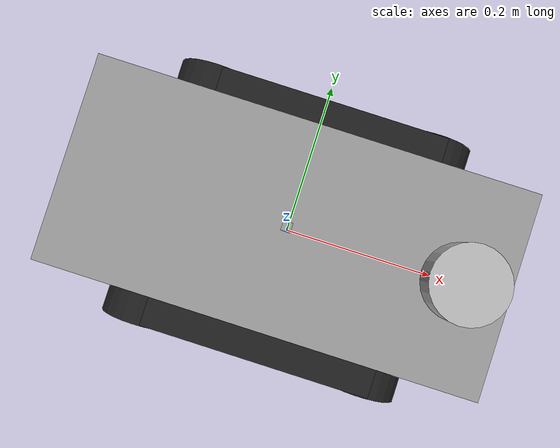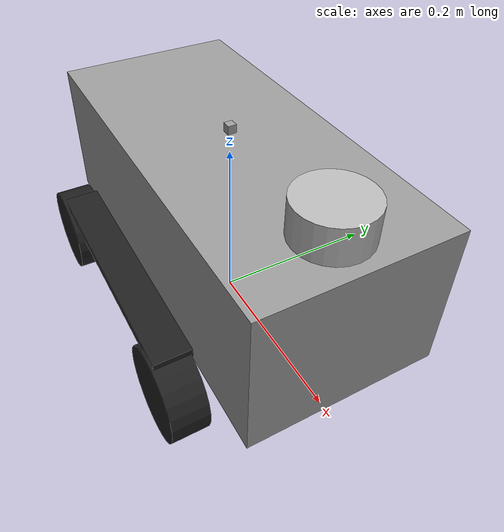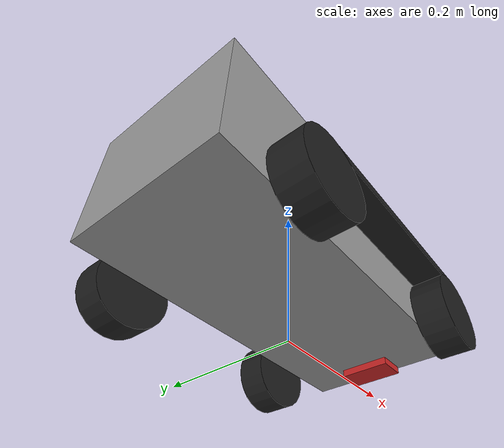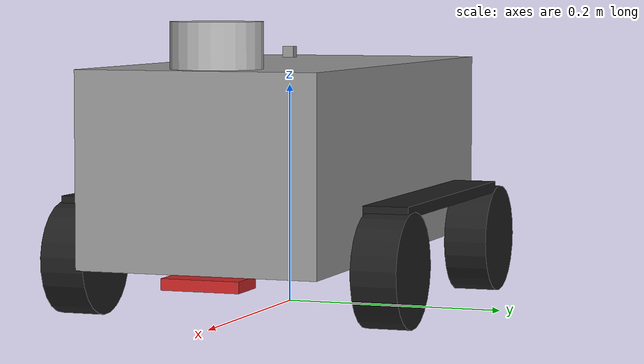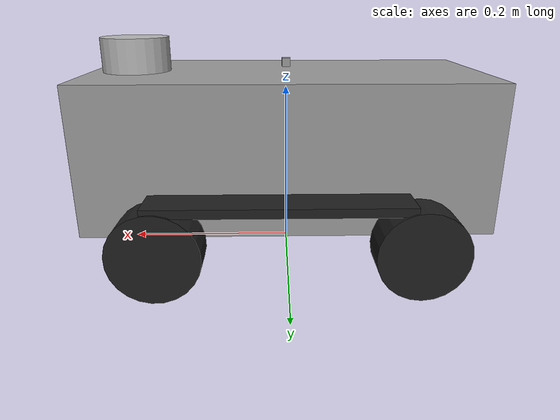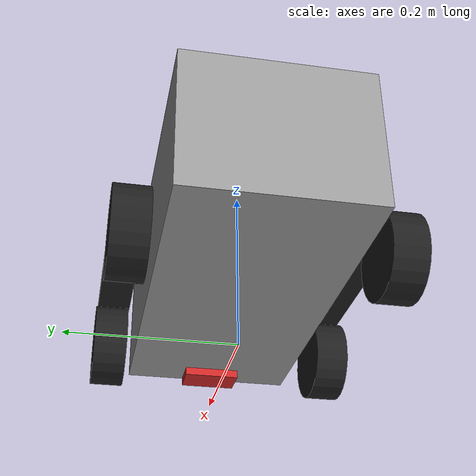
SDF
<?xml version="1.0" ?>

<sdf version="1.5">
  <!-- http://sdformat.org/spec?elem=sensor&ver=1.5 -->
  <model name="tankbot">
    <link name="chassis">
      <pose>0 0 0.135  0 0 0</pose>
      <inertial>
        <pose>0.04650000000000001 0 0  0 0 0</pose>
        <mass>2.0</mass>
        <inertia>
          <ixx>0.012592666666666665</ixx>
          <iyy>0.04085416666666667</iyy>
          <izz>0.043813500000000005</izz>
          <ixy>0</ixy>
          <ixz>0</ixz>
          <iyz>0</iyz>
        </inertia>
      </inertial>
      <collision name="collision">
        <geometry>
          <box>
            <size>0.465 0.216 0.17</size>
          </box>
        </geometry>
      </collision>
      <visual name="visual">
        <geometry>
          <box>
            <size>0.465 0.216 0.17</size>
          </box>
        </geometry>
        <material>
          <script>
            <uri>file://media/materials/scripts/gazebo.material</uri>
            <name>Gazebo/Grey</name>
          </script>
        </material>
      </visual>
    </link>

    <link name="wheel_fl">
      <pose>
        0.1395 0.14200000000000002 0.05
        -1.5707963267948966 -0.08726646259971647 0
      </pose>
      <inertial>
        <mass>0.25</mass>
        <inertia>
          <ixx>0.00018958333333333338</ixx>
          <iyy>0.00018958333333333338</iyy>
          <izz>0.00031250000000000006</izz>
          <ixy>0</ixy>
          <ixz>0</ixz>
          <iyz>0</iyz>
        </inertia>
      </inertial>
      <collision name="collision">
        <geometry>
          <cylinder>
            <radius>0.05</radius>
            <length>0.04</length>
          </cylinder>
        </geometry>
      </collision>
      <visual name="wheel_fl">
        <geometry>
          <cylinder>
            <radius>0.05</radius>
            <length>0.04</length>
          </cylinder>
        </geometry>
        <material>
          <script>
            <uri>file://media/materials/scripts/gazebo.material</uri>
            <name>Gazebo/Black</name>
          </script>
        </material>
      </visual>
    </link>

    <joint name="wheel_fl_drive" type="revolute">
      <parent>chassis</parent>
      <child>wheel_fl</child>
      <axis>
        <xyz>0 0 1</xyz>
      </axis>
    </joint>

    <link name="chain_l_up">
      <pose>
        0.0098 0.14 0.1
        0.0 0.0 0.0
      </pose>
      <gravity>0</gravity>
      <collision name="collision">
        <geometry>
          <box>
            <size>0.28 0.04 0.01</size>
          </box>
        </geometry>
      </collision>
      <visual name="visual">
        <geometry>
          <box>
            <size>0.28 0.04 0.01</size>
          </box>
        </geometry>
        <material>
          <script>
            <uri>file://media/materials/scripts/gazebo.material</uri>
            <name>Gazebo/Black</name>
          </script>
        </material>
      </visual>
    </link>

    <link name="chain_r_up">
      <pose>
        0.0098 -0.14 0.1
        0.0 0.0 0.0
      </pose>
      <gravity>0</gravity>
      <collision name="collision">
        <geometry>
          <box>
            <size>0.28 0.04 0.01</size>
          </box>
        </geometry>
      </collision>
      <visual name="visual">
        <geometry>
          <box>
            <size>0.28 0.04 0.01</size>
          </box>
        </geometry>
        <material>
          <script>
            <uri>file://media/materials/scripts/gazebo.material</uri>
            <name>Gazebo/Black</name>
          </script>
        </material>
      </visual>
    </link>

    <joint name="chain_up_joint" type="revolute">
      <parent>chassis</parent>
      <child>chain_r_up</child>
    </joint>

    <joint name="chain_up_2_joint" type="revolute">
      <parent>chassis</parent>
      <child>chain_l_up</child>
    </joint>

    <link name="wheel_fr">
      <pose>
        0.1395 -0.14200000000000002 0.05
        -1.5707963267948966 -0.08726646259971647 0
      </pose>
      <inertial>
        <mass>0.25</mass>
        <inertia>
          <ixx>0.00018958333333333338</ixx>
          <iyy>0.00018958333333333338</iyy>
          <izz>0.00031250000000000006</izz>
          <ixy>0</ixy>
          <ixz>0</ixz>
          <iyz>0</iyz>
        </inertia>
      </inertial>
      <collision name="collision">
        <geometry>
          <cylinder>
            <radius>0.05</radius>
            <length>0.04</length>
          </cylinder>
        </geometry>
      </collision>
      <visual name="visual">
        <geometry>
          <cylinder>
            <radius>0.05</radius>
            <length>0.04</length>
          </cylinder>
        </geometry>
        <material>
          <script>
            <uri>file://media/materials/scripts/gazebo.material</uri>
            <name>Gazebo/Black</name>
          </script>
        </material>
      </visual>
    </link>

    <joint name="wheel_fr_drive" type="revolute">
      <parent>chassis</parent>
      <child>wheel_fr</child>
      <axis>
        <xyz>0 0 1</xyz>
      </axis>
    </joint>

    <link name="wheel_rl">
      <pose>
       -0.1395 0.14200000000000002 0.05
       -1.5707963267948966 0 0
      </pose>
      <inertial>
        <mass>0.25</mass>
        <inertia>
          <ixx>0.00018958333333333338</ixx>
          <iyy>0.00018958333333333338</iyy>
          <izz>0.00031250000000000006</izz>
          <ixy>0</ixy>
          <ixz>0</ixz>
          <iyz>0</iyz>
        </inertia>
      </inertial>
      <collision name="collision">
        <geometry>
          <cylinder>
            <radius>0.05</radius>
            <length>0.04</length>
          </cylinder>
        </geometry>
      </collision>
      <visual name="visual">
        <geometry>
          <cylinder>
            <radius>0.05</radius>
            <length>0.04</length>
          </cylinder>
        </geometry>
        <material>
          <script>
            <uri>file://media/materials/scripts/gazebo.material</uri>
            <name>Gazebo/Black</name>
          </script>
        </material>
      </visual>
    </link>
    <joint name="wheel_rl_drive" type="revolute">
      <parent>chassis</parent>
      <child>wheel_rl</child>
      <axis>
        <xyz>0 0 1</xyz>
      </axis>
    </joint>

    <link name="wheel_rr">
      <pose>
       -0.1395 -0.14200000000000002 0.05
       -1.5707963267948966 0 0
      </pose>
      <inertial>
        <mass>0.25</mass>
        <inertia>
          <ixx>0.00018958333333333338</ixx>
          <iyy>0.00018958333333333338</iyy>
          <izz>0.00031250000000000006</izz>
          <ixy>0</ixy>
          <ixz>0</ixz>
          <iyz>0</iyz>
        </inertia>
      </inertial>
      <collision name="collision">
        <geometry>
          <cylinder>
            <radius>0.05</radius>
            <length>0.04</length>
          </cylinder>
        </geometry>
      </collision>
      <visual name="visual">
        <geometry>
          <cylinder>
            <radius>0.05</radius>
            <length>0.04</length>
          </cylinder>
        </geometry>
        <material>
          <script>
            <uri>file://media/materials/scripts/gazebo.material</uri>
            <name>Gazebo/Black</name>
          </script>
        </material>
      </visual>
    </link>
    <joint name="wheel_rr_drive" type="revolute">
      <parent>chassis</parent>
      <child>wheel_rr</child>
      <axis>
        <xyz>0 0 1</xyz>
      </axis>
    </joint>

     <include>
      <uri>model://ultrasonic_sensor</uri>
      <pose>
        0.18 0.0 0.24
        0.0 0.0 0.0
      </pose>
    </include>

    <joint name="sonar_joint" type="fixed">
      <child>ultrasonic_sensor::link</child>
      <parent>chassis</parent>
    </joint>

    <include>
      <uri>model://camera_sensor</uri>
      <pose>
        0.2 0.0 0.04
        0.0 1.57 0.0
      </pose>
    </include>

    <joint name="camera_joint" type="fixed">
      <child>camera_sensor::link</child>
      <parent>chassis</parent>
    </joint>

    <include>
      <uri>model://microphone_sensor</uri>
      <pose>
        0.0 0.0 0.23
        0.0 0.0 0.0
      </pose>
    </include>

  <plugin name="tankbot_control" filename='libtank_control_plugin.so'/>
  </model>
</sdf>

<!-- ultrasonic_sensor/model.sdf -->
<sdf version="1.6">
  <model name="ultrasonic_sensor">
    <pose>0 0 0.02 0 0 0</pose>
    <link name="link">

      <inertial>
        <mass>0.1</mass>
      </inertial>

      <visual name="visual">
        <geometry>
          <cylinder>
            <radius>0.04</radius>
            <length>0.04</length>
          </cylinder>
        </geometry>
      </visual>

      <collision name="collision-base">
        <pose>0 0 -0.0145 0 0 0</pose>
        <geometry>
          <box>
            <size>0.05 0.05 0.041</size>
          </box>
        </geometry>
      </collision>

      <collision name="collision-top">
        <pose>0 0 0.0205 0 0 0</pose>
        <geometry>
          <cylinder>
            <radius>0.021</radius>
            <length>0.029</length>
          </cylinder>
        </geometry>
      </collision>

      <sensor name="sonar" type="sonar">
        <pose>0.04 0 0 0 1.5 3.14</pose>
        <sonar>
          <min>0</min>
          <max>3</max>
          <radius>0.3</radius>
        </sonar>
        <plugin name="sonar" filename="libSonarPlugin.so" />
        <always_on>1</always_on>
        <update_rate>30</update_rate>
        <visualize>true</visualize>
      </sensor>

    </link>
  </model>
</sdf>

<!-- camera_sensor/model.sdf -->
<sdf version="1.6">
  <model name="camera_sensor">
    <pose>0 0 0.02 0 0 0</pose>
    <link name="link">
      <inertial>
        <mass>0.1</mass>
      </inertial>

      <visual name="visual">
        <geometry>
          <box>
            <size>0.01 0.07 0.04</size>
          </box>
        </geometry>
        <material>
          <script>
            <uri>file://media/materials/scripts/gazebo.material</uri>
            <name>Gazebo/Red</name>
          </script>
        </material>
      </visual>

      <collision name="collision">
        <pose>0 0 -0.0145 0 0 0</pose>
        <geometry>
          <box>
            <size>0.01 0.07 0.04</size>
          </box>
        </geometry>
      </collision>

      <sensor name='camera' type='camera'>
        <camera>
          <horizontal_fov>1.3962634</horizontal_fov>
          <image>
            <width>2</width>
            <height>2</height>
          </image>
          <clip>
            <near>0.02</near>
            <far>300</far>
          </clip>
        </camera>
        <always_on>1</always_on>
        <update_rate>10</update_rate>
        <visualize>1</visualize>

        <plugin name="camera_controller" filename="libCameraPlugin.so"></plugin>
      </sensor>

    </link>
  </model>
</sdf>

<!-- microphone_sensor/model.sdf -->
<sdf version="1.5">
  <model name="microphone_sensor">
    <pose>0 0 0 0 0 0</pose>
    <link name="link">
      <inertial>
        <mass>0.1</mass>
      </inertial>

      <visual name="visual">
        <geometry>
          <box>
            <size>0.01 0.01 0.01</size>
          </box>
        </geometry>
        <material>
          <script>
            <uri>file://media/materials/scripts/gazebo.material</uri>
            <name>Gazebo/Grey</name>
          </script>
        </material>
      </visual>

      <collision name="collision">
        <pose>0 0 0.0 0 0 0</pose>
        <geometry>
          <box>
            <size>0.01 0.01 0.01</size>
          </box>
        </geometry>
      </collision>
    </link>
    <plugin name="microphone_controller" filename="libmicrophone_control_plugin.so"></plugin>
  </model>
</sdf>
